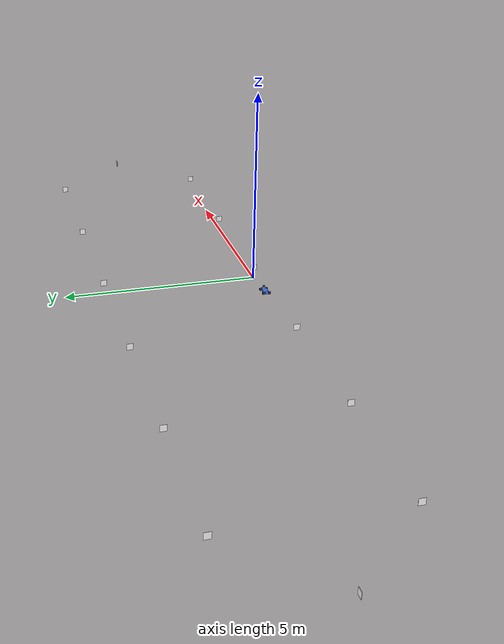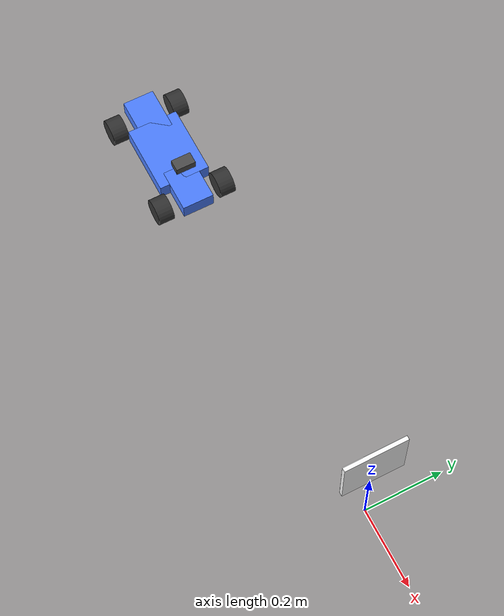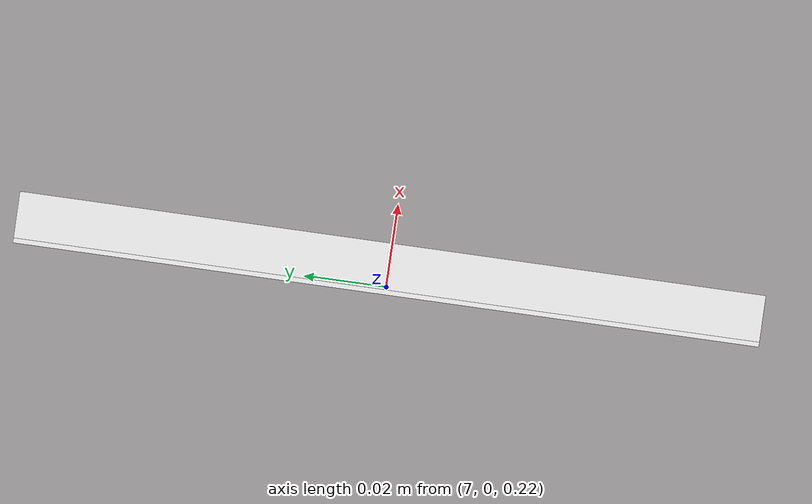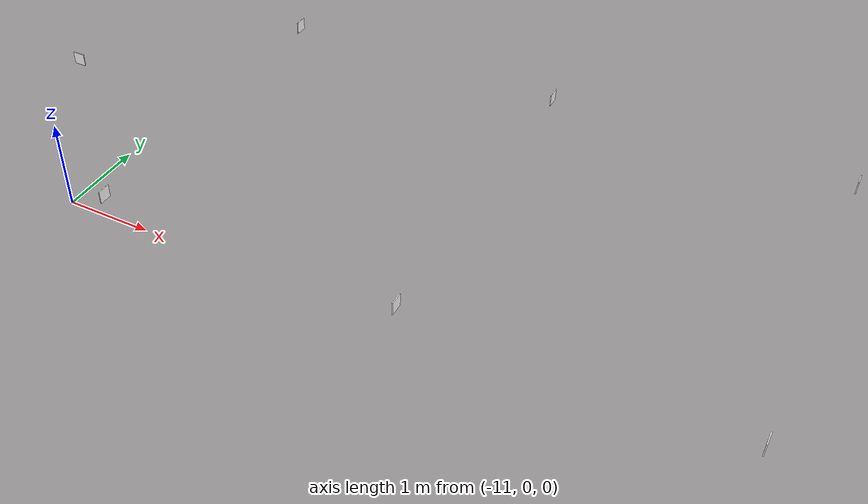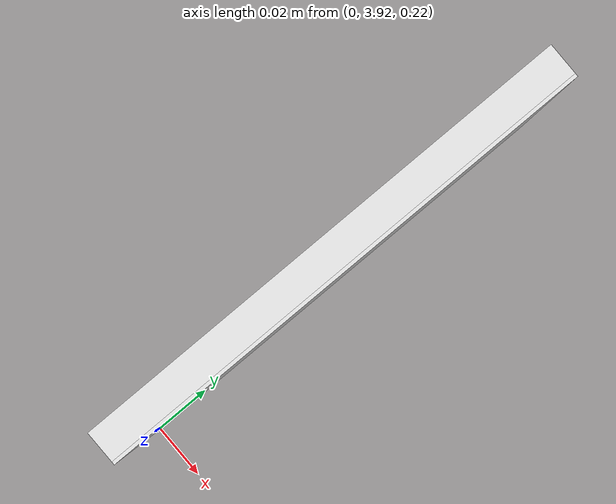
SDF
<sdf version="1.6">
 <world name="warehouse_racetrack">
  <physics name="10ms" type="ode">
   <max_step_size>0.01</max_step_size>
   <real_time_factor>1</real_time_factor>
  </physics>
  <plugin filename="gz-sim-physics-system" name="gz::sim::systems::Physics"/>
  <plugin filename="gz-sim-user-commands-system" name="gz::sim::systems::UserCommands"/>
  <plugin filename="gz-sim-scene-broadcaster-system" name="gz::sim::systems::SceneBroadcaster"/>
  <plugin filename="gz-sim-imu-system" name="gz::sim::systems::Imu"/>
  <plugin filename="gz-sim-sensors-system" name="gz::sim::systems::Sensors"/>
  <gravity>0 0 -9.8</gravity>
  <scene>
   <ambient>1.0 1.0 1.0 1.0</ambient>
   <background>0.3 0.3 0.3 1.0</background>
   <render_engine>ogre2</render_engine>
  </scene>
  <light type="directional" name="sun">
   <cast_shadows>false</cast_shadows>
   <pose>0 0 10 0 0 0</pose>
   <diffuse>1.0 1.0 1.0 1</diffuse>
   <specular>0.5 0.5 0.5 1</specular>
   <direction>0.0 0.0 -1</direction>
   <intensity>3.0</intensity>
  </light>
  <light type="directional" name="fill_front">
   <cast_shadows>false</cast_shadows>
   <pose>0 0 2 0 0 0</pose>
   <diffuse>0.8 0.8 0.8 1</diffuse>
   <specular>0.0 0.0 0.0 1</specular>
   <direction>0.0 1.0 -0.2</direction>
   <intensity>2.0</intensity>
  </light>
  <light type="directional" name="fill_back">
   <cast_shadows>false</cast_shadows>
   <pose>0 0 2 0 0 0</pose>
   <diffuse>0.8 0.8 0.8 1</diffuse>
   <specular>0.0 0.0 0.0 1</specular>
   <direction>0.0 -1.0 -0.2</direction>
   <intensity>2.0</intensity>
  </light>
  <model name="ground_plane">
   <static>true</static>
   <link name="link">
    <collision name="collision">
     <geometry><plane><normal>0 0 1</normal><size>200 200</size></plane></geometry>
    </collision>
   </link>
  </model>
  <model name="aruco_0">
   <static>true</static>
   <pose>0 0 0.3048 0 0 3.14159</pose>
   <link name="marker_link">
    <visual name="visual">
     <geometry><box><size>0.001 0.1524 0.1524</size></box></geometry>
     <material>
      <ambient>1 1 1 1</ambient>
      <diffuse>1 1 1 1</diffuse>
      <emissive>1 1 1 1</emissive>
      <pbr>
       <metal>
        <albedo_map>model://materials/textures/aruco_0.png</albedo_map>
        <emissive_map>model://materials/textures/aruco_0.png</emissive_map>
       </metal>
      </pbr>
     </material>
    </visual>
   </link>
  </model>
  <model name="aruco_1">
   <static>true</static>
   <pose>3.5 0 0.3048 0 0 3.14159</pose>
   <link name="marker_link">
    <visual name="visual">
     <geometry><box><size>0.001 0.1524 0.1524</size></box></geometry>
     <material>
      <ambient>1 1 1 1</ambient>
      <diffuse>1 1 1 1</diffuse>
      <emissive>1 1 1 1</emissive>
      <pbr>
       <metal>
        <albedo_map>model://materials/textures/aruco_1.png</albedo_map>
        <emissive_map>model://materials/textures/aruco_1.png</emissive_map>
       </metal>
      </pbr>
     </material>
    </visual>
   </link>
  </model>
  <model name="aruco_2">
   <static>true</static>
   <pose>7 0 0.3048 0 0 3.14159</pose>
   <link name="marker_link">
    <visual name="visual">
     <geometry><box><size>0.001 0.1524 0.1524</size></box></geometry>
     <material>
      <ambient>1 1 1 1</ambient>
      <diffuse>1 1 1 1</diffuse>
      <emissive>1 1 1 1</emissive>
      <pbr>
       <metal>
        <albedo_map>model://materials/textures/aruco_2.png</albedo_map>
        <emissive_map>model://materials/textures/aruco_2.png</emissive_map>
       </metal>
      </pbr>
     </material>
    </visual>
   </link>
  </model>
  <model name="aruco_3">
   <static>true</static>
   <pose>9 2 0.3048 0 0 -1.5708</pose>
   <link name="marker_link">
    <visual name="visual">
     <geometry><box><size>0.001 0.1524 0.1524</size></box></geometry>
     <material>
      <ambient>1 1 1 1</ambient>
      <diffuse>1 1 1 1</diffuse>
      <emissive>1 1 1 1</emissive>
      <pbr>
       <metal>
        <albedo_map>model://materials/textures/aruco_3.png</albedo_map>
        <emissive_map>model://materials/textures/aruco_3.png</emissive_map>
       </metal>
      </pbr>
     </material>
    </visual>
   </link>
  </model>
  <model name="aruco_4">
   <static>true</static>
   <pose>7 4 0.3048 0 0 0</pose>
   <link name="marker_link">
    <visual name="visual">
     <geometry><box><size>0.001 0.1524 0.1524</size></box></geometry>
     <material>
      <ambient>1 1 1 1</ambient>
      <diffuse>1 1 1 1</diffuse>
      <emissive>1 1 1 1</emissive>
      <pbr>
       <metal>
        <albedo_map>model://materials/textures/aruco_4.png</albedo_map>
        <emissive_map>model://materials/textures/aruco_4.png</emissive_map>
       </metal>
      </pbr>
     </material>
    </visual>
   </link>
  </model>
  <model name="aruco_5">
   <static>true</static>
   <pose>3.5 4 0.3048 0 0 0</pose>
   <link name="marker_link">
    <visual name="visual">
     <geometry><box><size>0.001 0.1524 0.1524</size></box></geometry>
     <material>
      <ambient>1 1 1 1</ambient>
      <diffuse>1 1 1 1</diffuse>
      <emissive>1 1 1 1</emissive>
      <pbr>
       <metal>
        <albedo_map>model://materials/textures/aruco_5.png</albedo_map>
        <emissive_map>model://materials/textures/aruco_5.png</emissive_map>
       </metal>
      </pbr>
     </material>
    </visual>
   </link>
  </model>
  <model name="aruco_6">
   <static>true</static>
   <pose>0 4 0.3048 0 0 0</pose>
   <link name="marker_link">
    <visual name="visual">
     <geometry><box><size>0.001 0.1524 0.1524</size></box></geometry>
     <material>
      <ambient>1 1 1 1</ambient>
      <diffuse>1 1 1 1</diffuse>
      <emissive>1 1 1 1</emissive>
      <pbr>
       <metal>
        <albedo_map>model://materials/textures/aruco_6.png</albedo_map>
        <emissive_map>model://materials/textures/aruco_6.png</emissive_map>
       </metal>
      </pbr>
     </material>
    </visual>
   </link>
  </model>
  <model name="aruco_7">
   <static>true</static>
   <pose>-3.5 4 0.3048 0 0 0</pose>
   <link name="marker_link">
    <visual name="visual">
     <geometry><box><size>0.001 0.1524 0.1524</size></box></geometry>
     <material>
      <ambient>1 1 1 1</ambient>
      <diffuse>1 1 1 1</diffuse>
      <emissive>1 1 1 1</emissive>
      <pbr>
       <metal>
        <albedo_map>model://materials/textures/aruco_7.png</albedo_map>
        <emissive_map>model://materials/textures/aruco_7.png</emissive_map>
       </metal>
      </pbr>
     </material>
    </visual>
   </link>
  </model>
  <model name="aruco_8">
   <static>true</static>
   <pose>-7 4 0.3048 0 0 0</pose>
   <link name="marker_link">
    <visual name="visual">
     <geometry><box><size>0.001 0.1524 0.1524</size></box></geometry>
     <material>
      <ambient>1 1 1 1</ambient>
      <diffuse>1 1 1 1</diffuse>
      <emissive>1 1 1 1</emissive>
      <pbr>
       <metal>
        <albedo_map>model://materials/textures/aruco_8.png</albedo_map>
        <emissive_map>model://materials/textures/aruco_8.png</emissive_map>
       </metal>
      </pbr>
     </material>
    </visual>
   </link>
  </model>
  <model name="aruco_9">
   <static>true</static>
   <pose>-10.5 4 0.3048 0 0 0</pose>
   <link name="marker_link">
    <visual name="visual">
     <geometry><box><size>0.001 0.1524 0.1524</size></box></geometry>
     <material>
      <ambient>1 1 1 1</ambient>
      <diffuse>1 1 1 1</diffuse>
      <emissive>1 1 1 1</emissive>
      <pbr>
       <metal>
        <albedo_map>model://materials/textures/aruco_9.png</albedo_map>
        <emissive_map>model://materials/textures/aruco_9.png</emissive_map>
       </metal>
      </pbr>
     </material>
    </visual>
   </link>
  </model>
  <model name="aruco_10">
   <static>true</static>
   <pose>-12.5 2 0.3048 0 0 1.5708</pose>
   <link name="marker_link">
    <visual name="visual">
     <geometry><box><size>0.001 0.1524 0.1524</size></box></geometry>
     <material>
      <ambient>1 1 1 1</ambient>
      <diffuse>1 1 1 1</diffuse>
      <emissive>1 1 1 1</emissive>
      <pbr>
       <metal>
        <albedo_map>model://materials/textures/aruco_10.png</albedo_map>
        <emissive_map>model://materials/textures/aruco_10.png</emissive_map>
       </metal>
      </pbr>
     </material>
    </visual>
   </link>
  </model>
  <model name="aruco_11">
   <static>true</static>
   <pose>-10.5 0 0.3048 0 0 3.14159</pose>
   <link name="marker_link">
    <visual name="visual">
     <geometry><box><size>0.001 0.1524 0.1524</size></box></geometry>
     <material>
      <ambient>1 1 1 1</ambient>
      <diffuse>1 1 1 1</diffuse>
      <emissive>1 1 1 1</emissive>
      <pbr>
       <metal>
        <albedo_map>model://materials/textures/aruco_11.png</albedo_map>
        <emissive_map>model://materials/textures/aruco_11.png</emissive_map>
       </metal>
      </pbr>
     </material>
    </visual>
   </link>
  </model>
  <model name="aruco_12">
   <static>true</static>
   <pose>-7 0 0.3048 0 0 3.14159</pose>
   <link name="marker_link">
    <visual name="visual">
     <geometry><box><size>0.001 0.1524 0.1524</size></box></geometry>
     <material>
      <ambient>1 1 1 1</ambient>
      <diffuse>1 1 1 1</diffuse>
      <emissive>1 1 1 1</emissive>
      <pbr>
       <metal>
        <albedo_map>model://materials/textures/aruco_12.png</albedo_map>
        <emissive_map>model://materials/textures/aruco_12.png</emissive_map>
       </metal>
      </pbr>
     </material>
    </visual>
   </link>
  </model>
  <model name="aruco_13">
   <static>true</static>
   <pose>-3.5 0 0.3048 0 0 3.14159</pose>
   <link name="marker_link">
    <visual name="visual">
     <geometry><box><size>0.001 0.1524 0.1524</size></box></geometry>
     <material>
      <ambient>1 1 1 1</ambient>
      <diffuse>1 1 1 1</diffuse>
      <emissive>1 1 1 1</emissive>
      <pbr>
       <metal>
        <albedo_map>model://materials/textures/aruco_13.png</albedo_map>
        <emissive_map>model://materials/textures/aruco_13.png</emissive_map>
       </metal>
      </pbr>
     </material>
    </visual>
   </link>
  </model>
  <model name="aruco_0_back">
   <static>true</static>
   <pose>0.005 0 0.3048 0 0 0</pose>
   <link name="link">
    <visual name="visual">
     <geometry><box><size>0.01 0.1524 0.1524</size></box></geometry>
     <material><ambient>1 1 1 1</ambient><diffuse>1 1 1 1</diffuse></material>
    </visual>
   </link>
  </model>
  <model name="aruco_1_back">
   <static>true</static>
   <pose>3.505 0 0.3048 0 0 0</pose>
   <link name="link">
    <visual name="visual">
     <geometry><box><size>0.01 0.1524 0.1524</size></box></geometry>
     <material><ambient>1 1 1 1</ambient><diffuse>1 1 1 1</diffuse></material>
    </visual>
   </link>
  </model>
  <model name="aruco_2_back">
   <static>true</static>
   <pose>7.005 0 0.3048 0 0 0</pose>
   <link name="link">
    <visual name="visual">
     <geometry><box><size>0.01 0.1524 0.1524</size></box></geometry>
     <material><ambient>1 1 1 1</ambient><diffuse>1 1 1 1</diffuse></material>
    </visual>
   </link>
  </model>
  <model name="aruco_3_back">
   <static>true</static>
   <pose>9 2.005 0.3048 0 0 1.57</pose>
   <link name="link">
    <visual name="visual">
     <geometry><box><size>0.01 0.1524 0.1524</size></box></geometry>
     <material><ambient>1 1 1 1</ambient><diffuse>1 1 1 1</diffuse></material>
    </visual>
   </link>
  </model>
  <model name="aruco_4_back">
   <static>true</static>
   <pose>6.995 4 0.3048 0 0 0</pose>
   <link name="link">
    <visual name="visual">
     <geometry><box><size>0.01 0.1524 0.1524</size></box></geometry>
     <material><ambient>1 1 1 1</ambient><diffuse>1 1 1 1</diffuse></material>
    </visual>
   </link>
  </model>
  <model name="aruco_5_back">
   <static>true</static>
   <pose>3.495 4 0.3048 0 0 0</pose>
   <link name="link">
    <visual name="visual">
     <geometry><box><size>0.01 0.1524 0.1524</size></box></geometry>
     <material><ambient>1 1 1 1</ambient><diffuse>1 1 1 1</diffuse></material>
    </visual>
   </link>
  </model>
  <model name="aruco_6_back">
   <static>true</static>
   <pose>-0.005 4 0.3048 0 0 0</pose>
   <link name="link">
    <visual name="visual">
     <geometry><box><size>0.01 0.1524 0.1524</size></box></geometry>
     <material><ambient>1 1 1 1</ambient><diffuse>1 1 1 1</diffuse></material>
    </visual>
   </link>
  </model>
  <model name="aruco_7_back">
   <static>true</static>
   <pose>-3.505 4 0.3048 0 0 0</pose>
   <link name="link">
    <visual name="visual">
     <geometry><box><size>0.01 0.1524 0.1524</size></box></geometry>
     <material><ambient>1 1 1 1</ambient><diffuse>1 1 1 1</diffuse></material>
    </visual>
   </link>
  </model>
  <model name="aruco_8_back">
   <static>true</static>
   <pose>-7.005 4 0.3048 0 0 0</pose>
   <link name="link">
    <visual name="visual">
     <geometry><box><size>0.01 0.1524 0.1524</size></box></geometry>
     <material><ambient>1 1 1 1</ambient><diffuse>1 1 1 1</diffuse></material>
    </visual>
   </link>
  </model>
  <model name="aruco_9_back">
   <static>true</static>
   <pose>-10.505 4 0.3048 0 0 0</pose>
   <link name="link">
    <visual name="visual">
     <geometry><box><size>0.01 0.1524 0.1524</size></box></geometry>
     <material><ambient>1 1 1 1</ambient><diffuse>1 1 1 1</diffuse></material>
    </visual>
   </link>
  </model>
  <model name="aruco_10_back">
   <static>true</static>
   <pose>-12.5 1.995 0.3048 0 0 1.57</pose>
   <link name="link">
    <visual name="visual">
     <geometry><box><size>0.01 0.1524 0.1524</size></box></geometry>
     <material><ambient>1 1 1 1</ambient><diffuse>1 1 1 1</diffuse></material>
    </visual>
   </link>
  </model>
  <model name="aruco_11_back">
   <static>true</static>
   <pose>-10.495 0 0.3048 0 0 0</pose>
   <link name="link">
    <visual name="visual">
     <geometry><box><size>0.01 0.1524 0.1524</size></box></geometry>
     <material><ambient>1 1 1 1</ambient><diffuse>1 1 1 1</diffuse></material>
    </visual>
   </link>
  </model>
  <model name="aruco_12_back">
   <static>true</static>
   <pose>-6.995 0 0.3048 0 0 0</pose>
   <link name="link">
    <visual name="visual">
     <geometry><box><size>0.01 0.1524 0.1524</size></box></geometry>
     <material><ambient>1 1 1 1</ambient><diffuse>1 1 1 1</diffuse></material>
    </visual>
   </link>
  </model>
  <model name="aruco_13_back">
   <static>true</static>
   <pose>-3.495 0 0.3048 0 0 0</pose>
   <link name="link">
    <visual name="visual">
     <geometry><box><size>0.01 0.1524 0.1524</size></box></geometry>
     <material><ambient>1 1 1 1</ambient><diffuse>1 1 1 1</diffuse></material>
    </visual>
   </link>
  </model>
  <include><uri>model://rc_ackermann_vehicle</uri><name>rc_vehicle</name><pose>-1 0 0.05 0 0 0</pose></include>
 </world>
</sdf>

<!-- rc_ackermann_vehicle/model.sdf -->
<sdf version="1.9">
  <model name="rc_ackermann_vehicle">

    <!-- Chassis -->
    <link name="chassis">
      <pose>0 0 0.04 0 0 0</pose>
      <inertial>
        <mass>2.0</mass>
        <inertia>
          <ixx>0.013</ixx>
          <iyy>0.027</iyy>
          <izz>0.033</izz>
        </inertia>
      </inertial>

      <collision name="collision">
        <geometry>
          <box>
            <size>0.4 0.2 0.04</size>
          </box>
        </geometry>
        <surface>
          <friction>
            <ode>
              <mu>0.01</mu>
              <mu2>0.01</mu2>
            </ode>
          </friction>
        </surface>
      </collision>

    </link>

    <!-- Middle Chassis -->
    <link name="chassis_middle">
      <pose>0 0 0.04 0 0 0</pose>
      <inertial>
        <mass>1.2</mass>
        <inertia>
          <ixx>0.006</ixx>
          <iyy>0.013</iyy>
          <izz>0.016</izz>
        </inertia>
      </inertial>
      <collision name="collision">
        <geometry>
          <box>
            <size>0.18 0.13 0.04</size>
          </box>
        </geometry>
        <surface>
          <friction>
            <ode>
              <mu>0.01</mu>
              <mu2>0.01</mu2>
            </ode>
          </friction>
        </surface>
      </collision>
      <visual name="visual">
        <geometry>
          <box>
            <size>0.18 0.13 0.04</size>
          </box>
        </geometry>
        <material>
          <ambient>0.2 0.4 1.0 1</ambient>
          <diffuse>0.3 0.5 1.0 1</diffuse>
        </material>
      </visual>
    </link>

    <!-- Front Chassis -->
    <link name="chassis_front">
      <pose>0.11 0 0.04 0 0 0</pose>
      <inertial>
        <mass>0.4</mass>
        <inertia>
          <ixx>0.002</ixx>
          <iyy>0.004</iyy>
          <izz>0.005</izz>
        </inertia>
      </inertial>
      <collision name="collision">
        <geometry>
          <box>
            <size>0.11 0.08 0.04</size>
          </box>
        </geometry>
        <surface>
          <friction>
            <ode>
              <mu>0.01</mu>
              <mu2>0.01</mu2>
            </ode>
          </friction>
        </surface>
      </collision>
      <visual name="visual">
        <geometry>
          <box>
            <size>0.11 0.08 0.04</size>
          </box>
        </geometry>
        <material>
          <ambient>0.2 0.4 1.0 1</ambient>
          <diffuse>0.3 0.5 1.0 1</diffuse>
        </material>
      </visual>
    </link>

    <!-- Back Chassis -->
    <link name="chassis_back">
      <pose>-0.115 0 0.04 0 0 0</pose>
      <inertial>
        <mass>0.4</mass>
        <inertia>
          <ixx>0.002</ixx>
          <iyy>0.004</iyy>
          <izz>0.005</izz>
        </inertia>
      </inertial>
      <collision name="collision">
        <geometry>
          <box>
            <size>0.11 0.08 0.04</size>
          </box>
        </geometry>
        <surface>
          <friction>
            <ode>
              <mu>0.01</mu>
              <mu2>0.01</mu2>
            </ode>
          </friction>
        </surface>
      </collision>
      <visual name="visual">
        <geometry>
          <box>
            <size>0.11 0.08 0.04</size>
          </box>
        </geometry>
        <material>
          <ambient>0.2 0.4 1.0 1</ambient>
          <diffuse>0.3 0.5 1.0 1</diffuse>
        </material>
      </visual>
    </link>

    <!-- Rear Right Wheel -->
    <link name="rear_right_wheel">
      <pose>-0.127 -0.08255 0.03 -1.5707 0 0</pose>
      <inertial>
        <mass>0.3</mass>
        <inertia>
          <ixx>0.00027</ixx>
          <iyy>0.00027</iyy>
          <izz>0.00027</izz>
        </inertia>
      </inertial>

      <collision name="collision">
        <geometry>
          <cylinder>
            <radius>0.033</radius>
            <length>0.04</length>
          </cylinder>
        </geometry>
        <surface>
          <friction>
            <ode>
              <mu>1.0</mu>
              <mu2>1.0</mu2>
            </ode>
          </friction>
        </surface>
      </collision>

      <visual name="visual">
        <geometry>
          <cylinder>
            <radius>0.033</radius>
            <length>0.04</length>
          </cylinder>
        </geometry>
        <material>
          <ambient>0.1 0.1 0.1 1</ambient>
          <diffuse>0.2 0.2 0.2 1</diffuse>
        </material>
      </visual>
    </link>

    <!-- Rear Left Wheel -->
    <link name="rear_left_wheel">
      <pose>-0.127 0.08255 0.03 -1.5707 0 0</pose>
      <inertial>
        <mass>0.3</mass>
        <inertia>
          <ixx>0.00027</ixx>
          <iyy>0.00027</iyy>
          <izz>0.00027</izz>
        </inertia>
      </inertial>
      <collision name="collision">
        <geometry>
          <cylinder>
            <radius>0.033</radius>
            <length>0.04</length>
          </cylinder>
        </geometry>
        <surface>
          <friction>
            <ode>
              <mu>1.0</mu>
              <mu2>1.0</mu2>
            </ode>
          </friction>
        </surface>
      </collision>
      <visual name="visual">
        <geometry>
          <cylinder>
            <radius>0.033</radius>
            <length>0.04</length>
          </cylinder>
        </geometry>
        <material>
          <ambient>0.1 0.1 0.1 1</ambient>
          <diffuse>0.2 0.2 0.2 1</diffuse>
        </material>
      </visual>
    </link>

    <!-- Front Left Wheel -->
    <link name="front_left_wheel">
      <pose relative_to="front_left_steer">0 0 -0.01 -1.5707 0 0</pose>
      <inertial>
        <mass>0.3</mass>
        <inertia>
          <ixx>0.00027</ixx>
          <iyy>0.00027</iyy>
          <izz>0.00027</izz>
        </inertia>
      </inertial>

      <collision name="collision">
        <geometry>
          <cylinder>
            <radius>0.033</radius>
            <length>0.04</length>
          </cylinder>
        </geometry>
        <surface>
          <friction>
            <ode>
              <mu>1.0</mu>
              <mu2>1.0</mu2>
            </ode>
          </friction>
        </surface>
      </collision>

      <visual name="visual">
        <geometry>
          <cylinder>
            <radius>0.033</radius>
            <length>0.04</length>
          </cylinder>
        </geometry>
        <material>
          <ambient>0.1 0.1 0.1 1</ambient>
          <diffuse>0.2 0.2 0.2 1</diffuse>
        </material>
      </visual>
    </link>

    <!-- Front Right Wheel -->
    <link name="front_right_wheel">
      <pose relative_to="front_right_steer">0 0 -0.01 -1.5707 0 0</pose>
      <inertial>
        <mass>0.3</mass>
        <inertia>
          <ixx>0.00027</ixx>
          <iyy>0.00027</iyy>
          <izz>0.00027</izz>
        </inertia>
      </inertial>

      <collision name="collision">
        <geometry>
          <cylinder>
            <radius>0.033</radius>
            <length>0.04</length>
          </cylinder>
        </geometry>
        <surface>
          <friction>
            <ode>
              <mu>1.0</mu>
              <mu2>1.0</mu2>
            </ode>
          </friction>
        </surface>
      </collision>

      <visual name="visual">
        <geometry>
          <cylinder>
            <radius>0.033</radius>
            <length>0.04</length>
          </cylinder>
        </geometry>
        <material>
          <ambient>0.1 0.1 0.1 1</ambient>
          <diffuse>0.2 0.2 0.2 1</diffuse>
        </material>
      </visual>
    </link>

    <!-- Front Left Steering Knuckle -->
    <link name="front_left_steer">
      <pose>0.127 0.08255 0.04 0 0 0</pose>
      <inertial>
        <mass>0.1</mass>
        <inertia>
          <ixx>0.0001</ixx>
          <iyy>0.0001</iyy>
          <izz>0.0001</izz>
        </inertia>
      </inertial>
    </link>

    <!-- Front Right Steering Knuckle -->
    <link name="front_right_steer">
      <pose>0.127 -0.08255 0.04 0 0 0</pose>
      <inertial>
        <mass>0.1</mass>
        <inertia>
          <ixx>0.0001</ixx>
          <iyy>0.0001</iyy>
          <izz>0.0001</izz>
        </inertia>
      </inertial>
    </link>

    <!-- Rear Left Wheel Joint -->
    <joint name="rear_left_wheel_joint" type="revolute">
      <parent>chassis</parent>
      <child>rear_left_wheel</child>
      <axis>
        <xyz expressed_in="rear_left_wheel">0 0 1</xyz>
        <limit>
          <lower>-1e16</lower>
          <upper>1e16</upper>
        </limit>
        <dynamics>
          <damping>0.01</damping>
          <friction>0.01</friction>
        </dynamics>
      </axis>
    </joint>

    <!-- Rear Right Wheel Joint -->
    <joint name="rear_right_wheel_joint" type="revolute">
      <parent>chassis</parent>
      <child>rear_right_wheel</child>
      <axis>
        <xyz expressed_in="rear_right_wheel">0 0 1</xyz>
        <limit>
          <lower>-1e16</lower>
          <upper>1e16</upper>
        </limit>
        <dynamics>
          <damping>0.01</damping>
          <friction>0.01</friction>
        </dynamics>
      </axis>
    </joint>

    <!-- Front Left Steering Joint -->
    <joint name="front_left_steer_joint" type="revolute">
      <parent>chassis</parent>
      <child>front_left_steer</child>
      <axis>
        <xyz>0 0 1</xyz>
        <limit>
          <lower>-0.5</lower>
          <upper>0.5</upper>
          <effort>1e6</effort>
        </limit>
        <dynamics>
          <damping>0.02</damping>
        </dynamics>
      </axis>
    </joint>

    <!-- Front Right Steering Joint -->
    <joint name="front_right_steer_joint" type="revolute">
      <parent>chassis</parent>
      <child>front_right_steer</child>
      <axis>
        <xyz>0 0 1</xyz>
        <limit>
          <lower>-0.5</lower>
          <upper>0.5</upper>
          <effort>1e6</effort>
        </limit>
        <dynamics>
          <damping>0.02</damping>
        </dynamics>
      </axis>
    </joint>

    <!-- Front Left Wheel Joint -->
    <joint name="front_left_wheel_joint" type="revolute">
      <parent>front_left_steer</parent>
      <child>front_left_wheel</child>
      <axis>
        <xyz expressed_in="front_left_wheel">0 0 1</xyz>
        <limit>
          <lower>-1e16</lower>
          <upper>1e16</upper>
        </limit>
        <dynamics>
          <damping>0.01</damping>
          <friction>0.01</friction>
        </dynamics>
      </axis>
    </joint>

    <!-- Front Right Wheel Joint -->
    <joint name="front_right_wheel_joint" type="revolute">
      <parent>front_right_steer</parent>
      <child>front_right_wheel</child>
      <axis>
        <xyz expressed_in="front_right_wheel">0 0 1</xyz>
        <limit>
          <lower>-1e16</lower>
          <upper>1e16</upper>
        </limit>
        <dynamics>
          <damping>0.01</damping>
          <friction>0.01</friction>
        </dynamics>
      </axis>
    </joint>

    <!-- Ackermann Steering Plugin -->
    <plugin
      filename="gz-sim-ackermann-steering-system"
      name="gz::sim::systems::AckermannSteering">
      <left_joint>rear_left_wheel_joint</left_joint>
      <right_joint>rear_right_wheel_joint</right_joint>
      <left_steering_joint>front_left_steer_joint</left_steering_joint>
      <right_steering_joint>front_right_steer_joint</right_steering_joint>
      <wheel_base>0.254</wheel_base>
      <wheel_separation>0.14</wheel_separation>
      <kingpin_width>0.14</kingpin_width>
      <steering_limit>0.786</steering_limit>
      <wheel_radius>0.033</wheel_radius>
      <min_velocity>-2.0</min_velocity>
      <max_velocity>2.0</max_velocity>
      <min_acceleration>-5.0</min_acceleration>
      <max_acceleration>5.0</max_acceleration>
      <steer_p_gain>50.0</steer_p_gain>
      <topic>/model/rc_ackermann_vehicle/cmd_vel</topic>
      <odometry_topic>/model/rc_ackermann_vehicle/odom</odometry_topic>
    </plugin>

    <!-- Joint State Publisher Plugin -->
    <plugin
      filename="gz-sim-joint-state-publisher-system"
      name="gz::sim::systems::JointStatePublisher">
      <joint_name>rear_left_wheel_joint</joint_name>
      <joint_name>rear_right_wheel_joint</joint_name>
      <joint_name>front_left_wheel_joint</joint_name>
      <joint_name>front_right_wheel_joint</joint_name>
      <joint_name>front_left_steer_joint</joint_name>
      <joint_name>front_right_steer_joint</joint_name>
      <topic>/model/rc_ackermann_vehicle/joint_states</topic>
      <update_rate>50</update_rate>
    </plugin>

    <!-- Rear Axle Center Link -->
    <link name="rear_axle_center">
      <pose relative_to="chassis">-0.127 0 0.04 0 0 0</pose>
      <inertial>
        <mass>0.01</mass>
        <inertia>
          <ixx>0.00001</ixx>
          <iyy>0.00001</iyy>
          <izz>0.00001</izz>
        </inertia>
      </inertial>
    </link>

    <joint name="rear_axle_center_joint" type="fixed">
      <parent>chassis</parent>
      <child>rear_axle_center</child>
    </joint>

    <!-- Connect chassis parts together -->
    <joint name="chassis_middle_joint" type="fixed">
      <parent>chassis</parent>
      <child>chassis_middle</child>
    </joint>

    <joint name="chassis_front_joint" type="fixed">
      <parent>chassis</parent>
      <child>chassis_front</child>
    </joint>

    <joint name="chassis_back_joint" type="fixed">
      <parent>chassis</parent>
      <child>chassis_back</child>
    </joint>

    <!-- IMU Sensor at chassis center -->
    <link name="imu_link">
      <pose relative_to="chassis">-0.002 0 0.04 0 0 0</pose>
      <inertial>
        <mass>0.01</mass>
        <inertia>
          <ixx>0.00001</ixx>
          <iyy>0.00001</iyy>
          <izz>0.00001</izz>
        </inertia>
      </inertial>
      <sensor name="imu_sensor" type="imu">
        <always_on>1</always_on>
        <update_rate>100</update_rate>
        <imu>
          <angular_velocity>
            <x>
              <noise type="gaussian">
                <mean>0.0</mean>
                <stddev>0.009</stddev>
              </noise>
            </x>
            <y>
              <noise type="gaussian">
                <mean>0.0</mean>
                <stddev>0.009</stddev>
              </noise>
            </y>
            <z>
              <noise type="gaussian">
                <mean>0.0</mean>
                <stddev>0.009</stddev>
              </noise>
            </z>
          </angular_velocity>
          <linear_acceleration>
            <x>
              <noise type="gaussian">
                <mean>0.0</mean>
                <stddev>0.017</stddev>
              </noise>
            </x>
            <y>
              <noise type="gaussian">
                <mean>0.0</mean>
                <stddev>0.017</stddev>
              </noise>
            </y>
            <z>
              <noise type="gaussian">
                <mean>0.0</mean>
                <stddev>0.017</stddev>
              </noise>
            </z>
          </linear_acceleration>
        </imu>
        <topic>/model/rc_ackermann_vehicle/imu</topic>
      </sensor>
    </link>

    <joint name="imu_joint" type="fixed">
      <parent>chassis</parent>
      <child>imu_link</child>
    </joint>

    <!-- RGBD Camera (similar to OAK-D Lite) -->
    <link name="camera_link">
      <pose relative_to="rear_axle_center">0.219 0 0.05 0 0 0</pose>
      <inertial>
        <mass>0.001</mass>
        <inertia>
          <ixx>0.000001</ixx>
          <iyy>0.000001</iyy>
          <izz>0.000001</izz>
        </inertia>
      </inertial>

      <visual name="camera_visual">
        <geometry>
          <box>
            <size>0.03 0.05 0.02</size>
          </box>
        </geometry>
        <material>
          <ambient>0.2 0.2 0.2 1</ambient>
          <diffuse>0.3 0.3 0.3 1</diffuse>
        </material>
      </visual>

      <!-- RGB Camera -->
      <sensor name="rgbd_camera" type="rgbd_camera">
        <camera>
          <horizontal_fov>1.204</horizontal_fov>
          <image>
            <width>640</width>
            <height>400</height>
            <format>R8G8B8</format>
          </image>
          <clip>
            <near>0.1</near>
            <far>10.0</far>
          </clip>
          <noise>
            <type>gaussian</type>
            <mean>0.0</mean>
            <stddev>0.007</stddev>
          </noise>
        </camera>
        <always_on>1</always_on>
        <update_rate>15</update_rate>
        <visualize>false</visualize>
        <topic>camera</topic>
      </sensor>
    </link>

    <joint name="camera_joint" type="fixed">
      <parent>chassis</parent>
      <child>camera_link</child>
    </joint>

  </model>
</sdf>
